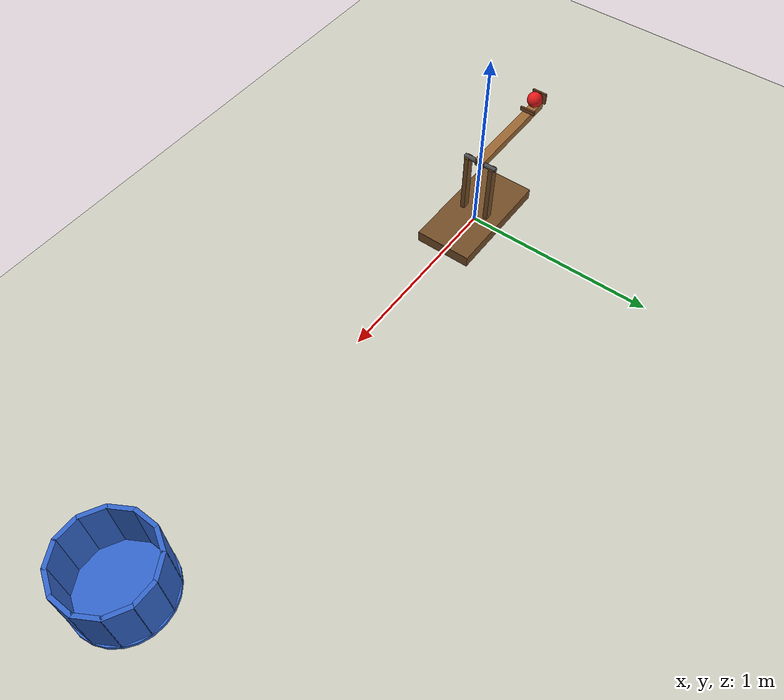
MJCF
<mujoco model="catapult_bucket">
  <compiler angle="degree"/>
  <option timestep="0.002" gravity="0 0 -9.81"/>

  <worldbody>
    <light name="sun" pos="1 -2 4" dir="-0.2 0.4 -1" directional="true"/>
    <geom name="floor" type="plane" size="6 3 0.1" rgba="0.8 0.8 0.75 1"/>

    <geom name="catapult_base" type="box" pos="0 0 0.03" size="0.3 0.15 0.03" contype="0" conaffinity="0" rgba="0.45 0.3 0.15 1"/>
    <geom name="catapult_post_left" type="box" pos="0 0.07 0.215" size="0.02 0.012 0.185" contype="0" conaffinity="0" rgba="0.45 0.3 0.15 1"/>
    <geom name="catapult_post_right" type="box" pos="0 -0.07 0.215" size="0.02 0.012 0.185" contype="0" conaffinity="0" rgba="0.45 0.3 0.15 1"/>
    <geom name="catapult_axle" type="cylinder" fromto="0 -0.09 0.4 0 0.09 0.4" size="0.012" contype="0" conaffinity="0" rgba="0.3 0.3 0.3 1"/>

    <body name="catapult_arm" pos="0 0 0.4">
      <joint name="catapult_hinge" type="hinge" axis="0 1 0" limited="true" range="0 38.16" solreflimit="0.004 1"/>
      <geom name="catapult_arm_beam" type="box" pos="-0.27 0 0" size="0.28 0.025 0.02" mass="0.6" contype="2" conaffinity="2" rgba="0.6 0.4 0.2 1"/>
      <geom name="catapult_cup_outer" type="box" pos="-0.5455 0 0.05" size="0.005 0.04 0.03" mass="0.02" contype="2" conaffinity="2" rgba="0.5 0.3 0.15 1"/>
      <geom name="catapult_cup_inner" type="box" pos="-0.435 0 0.03" size="0.005 0.04 0.01" mass="0.01" contype="2" conaffinity="2" rgba="0.5 0.3 0.15 1"/>
    </body>

    <body name="ball" pos="-0.5 0 0.46">
      <freejoint name="ball_free"/>
      <geom name="ball" type="sphere" size="0.04" mass="0.1" solref="0.004 1" condim="6" friction="0.8 0.01 0.005" rgba="0.9 0.1 0.1 1"/>
    </body>

    <body name="bucket" pos="2.5 0 0">
      <geom name="bucket_bottom" type="cylinder" pos="0 0 0.01" size="0.23 0.01" rgba="0.2 0.4 0.8 1"/>
      <geom name="bucket_wall0" type="box" pos="0.21 0 0.17" size="0.01 0.06 0.15" euler="0 0 0" rgba="0.2 0.4 0.8 1"/>
      <geom name="bucket_wall1" type="box" pos="0.18187 0.105 0.17" size="0.01 0.06 0.15" euler="0 0 30" rgba="0.2 0.4 0.8 1"/>
      <geom name="bucket_wall2" type="box" pos="0.105 0.18187 0.17" size="0.01 0.06 0.15" euler="0 0 60" rgba="0.2 0.4 0.8 1"/>
      <geom name="bucket_wall3" type="box" pos="0 0.21 0.17" size="0.01 0.06 0.15" euler="0 0 90" rgba="0.2 0.4 0.8 1"/>
      <geom name="bucket_wall4" type="box" pos="-0.105 0.18187 0.17" size="0.01 0.06 0.15" euler="0 0 120" rgba="0.2 0.4 0.8 1"/>
      <geom name="bucket_wall5" type="box" pos="-0.18187 0.105 0.17" size="0.01 0.06 0.15" euler="0 0 150" rgba="0.2 0.4 0.8 1"/>
      <geom name="bucket_wall6" type="box" pos="-0.21 0 0.17" size="0.01 0.06 0.15" euler="0 0 180" rgba="0.2 0.4 0.8 1"/>
      <geom name="bucket_wall7" type="box" pos="-0.18187 -0.105 0.17" size="0.01 0.06 0.15" euler="0 0 210" rgba="0.2 0.4 0.8 1"/>
      <geom name="bucket_wall8" type="box" pos="-0.105 -0.18187 0.17" size="0.01 0.06 0.15" euler="0 0 240" rgba="0.2 0.4 0.8 1"/>
      <geom name="bucket_wall9" type="box" pos="0 -0.21 0.17" size="0.01 0.06 0.15" euler="0 0 270" rgba="0.2 0.4 0.8 1"/>
      <geom name="bucket_wall10" type="box" pos="0.105 -0.18187 0.17" size="0.01 0.06 0.15" euler="0 0 300" rgba="0.2 0.4 0.8 1"/>
      <geom name="bucket_wall11" type="box" pos="0.18187 -0.105 0.17" size="0.01 0.06 0.15" euler="0 0 330" rgba="0.2 0.4 0.8 1"/>
    </body>
  </worldbody>

  <contact>
    <pair name="ball_beam" geom1="ball" geom2="catapult_arm_beam" condim="1" solref="0.004 1"/>
    <pair name="ball_cup_outer" geom1="ball" geom2="catapult_cup_outer" condim="1" solref="0.004 1"/>
    <pair name="ball_cup_inner" geom1="ball" geom2="catapult_cup_inner" condim="1" solref="0.004 1"/>
  </contact>

  <actuator>
    <velocity name="catapult_motor" joint="catapult_hinge" kv="20" forcelimited="true" forcerange="-25 25"/>
  </actuator>

  <keyframe>
    <key name="start" qpos="0 -0.5 0 0.46 1 0 0 0" qvel="0 0 0 0 0 0 0" ctrl="9.92"/>
  </keyframe>
</mujoco>
